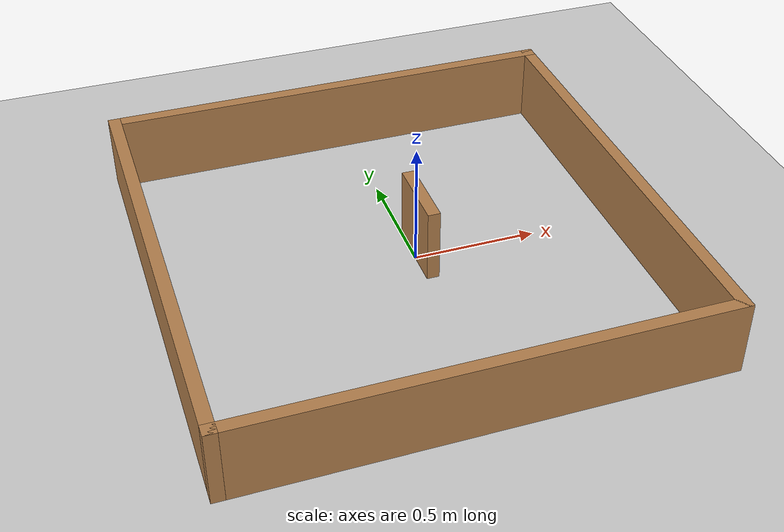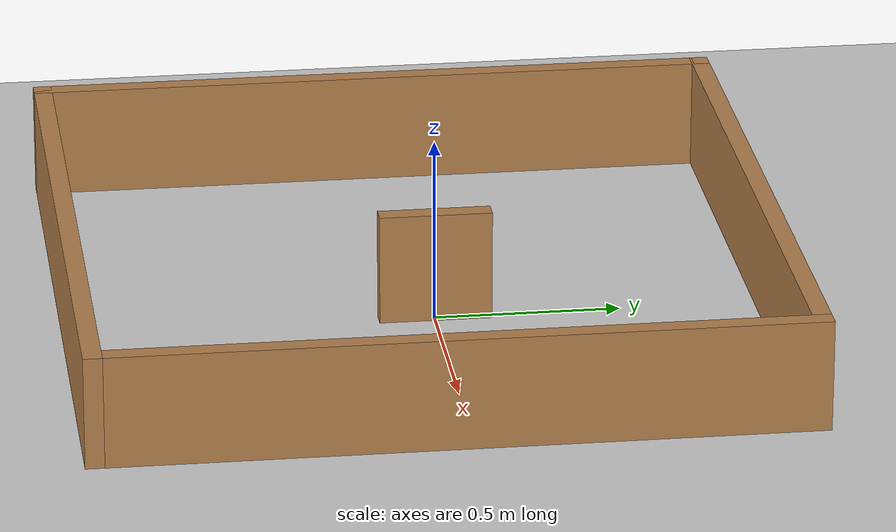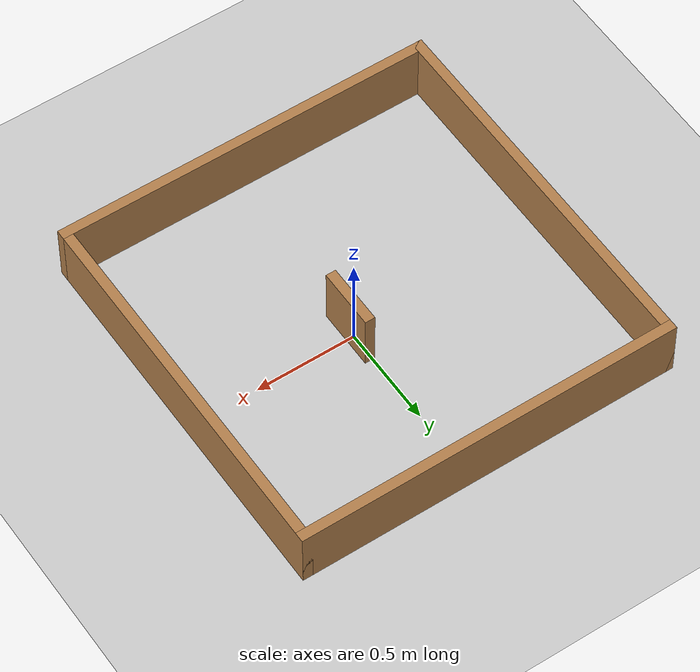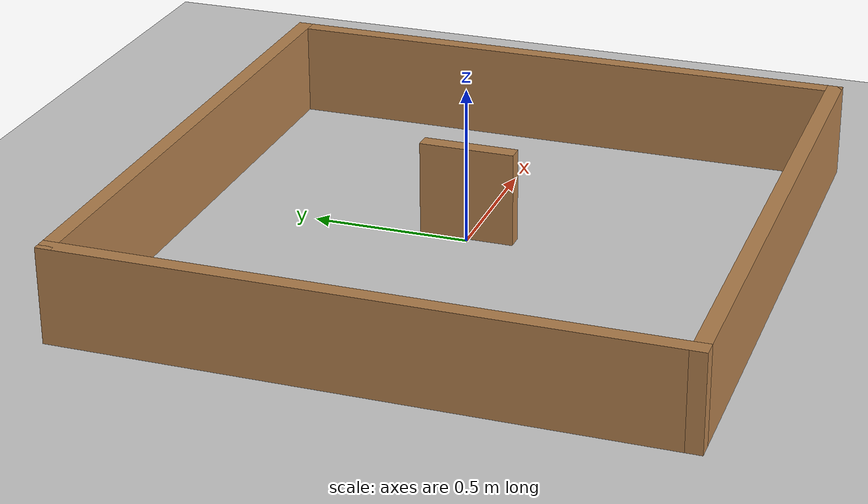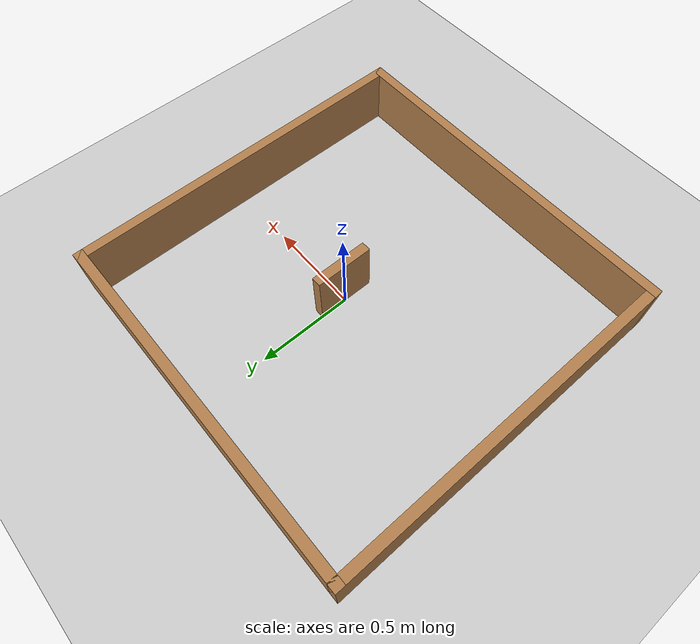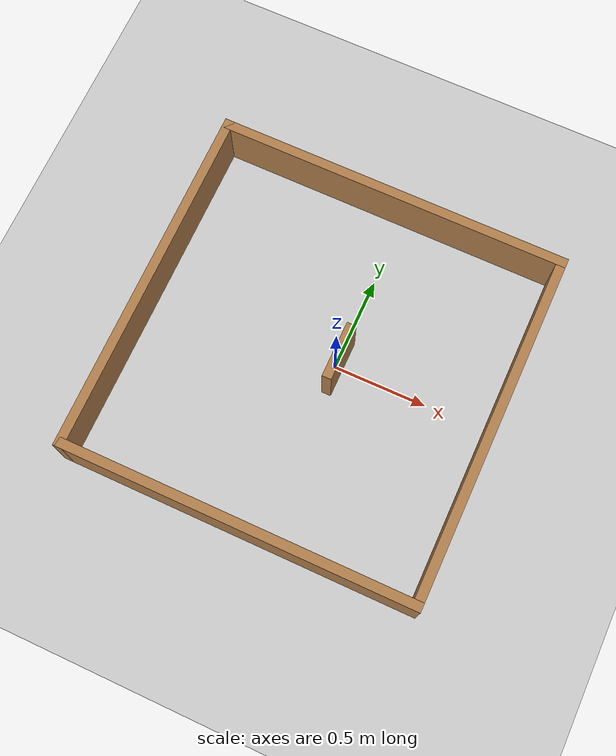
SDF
<sdf version="1.7">
 <world name="default">
  <light name="sun" type="directional">
   <pose>0 0 10 0 -0 0</pose>
   <diffuse>0.8 0.8 0.8 1</diffuse>
   <specular>0.2 0.2 0.2 1</specular>
   <attenuation>
    <range>1000</range>
    <constant>0.9</constant>
    <linear>0.01</linear>
    <quadratic>0.001</quadratic>
   </attenuation>
   <direction>-0.5 0.1 -0.9</direction>
   <spot><inner_angle>0</inner_angle><outer_angle>0</outer_angle><falloff>0</falloff></spot>
  </light>
  <model name="ground_plane">
   <static>1</static>
   <link name="link">
    <collision name="collision">
     <geometry><plane><normal>0 0 1</normal><size>100 100</size></plane></geometry>
     <surface><friction><ode><mu>100</mu><mu2>50</mu2></ode></friction></surface>
    </collision>
    <visual name="visual">
     <cast_shadows>0</cast_shadows>
     <geometry><plane><normal>0 0 1</normal><size>100 100</size></plane></geometry>
     <material>
      <script><uri>file://media/materials/scripts/gazebo.material</uri><name>Gazebo/Grey</name></script>
     </material>
    </visual>
   </link>
  </model>
  <model name="square2m">
   <pose>0 0.5 0.01 0 -0 0</pose>
   <link name="Wall_0">
    <collision name="Wall_0_Collision">
     <geometry><box><size>1.9 0.05 0.3</size></box></geometry>
     <pose>0 0 0.15 0 -0 0</pose>
    </collision>
    <visual name="Wall_0_Visual">
     <pose>0 0 0.15 0 -0 0</pose>
     <geometry><box><size>1.9 0.05 0.3</size></box></geometry>
     <material>
      <script><uri>file://media/materials/scripts/gazebo.material</uri><name>Gazebo/Wood</name></script>
      <ambient>1 1 1 1</ambient>
     </material>
     <meta><layer>0</layer></meta>
    </visual>
    <pose>-0.0825 0.3825 0 0 -0 0</pose>
   </link>
   <link name="Wall_1">
    <collision name="Wall_1_Collision">
     <geometry><box><size>1.9 0.05 0.3</size></box></geometry>
     <pose>0 0 0.15 0 -0 0</pose>
    </collision>
    <visual name="Wall_1_Visual">
     <pose>0 0 0.15 0 -0 0</pose>
     <geometry><box><size>1.9 0.05 0.3</size></box></geometry>
     <material>
      <script><uri>file://media/materials/scripts/gazebo.material</uri><name>Gazebo/Wood</name></script>
      <ambient>1 1 1 1</ambient>
     </material>
     <meta><layer>0</layer></meta>
    </visual>
    <pose>0.8425 -0.5425 0 0 -0 -1.5708</pose>
   </link>
   <link name="Wall_2">
    <collision name="Wall_2_Collision">
     <geometry><box><size>1.9 0.05 0.3</size></box></geometry>
     <pose>0 0 0.15 0 -0 0</pose>
    </collision>
    <visual name="Wall_2_Visual">
     <pose>0 0 0.15 0 -0 0</pose>
     <geometry><box><size>1.9 0.05 0.3</size></box></geometry>
     <material>
      <script><uri>file://media/materials/scripts/gazebo.material</uri><name>Gazebo/Wood</name></script>
      <ambient>1 1 1 1</ambient>
     </material>
     <meta><layer>0</layer></meta>
    </visual>
    <pose>-0.0825 -1.4675 0 0 -0 3.14159</pose>
   </link>
   <link name="Wall_3">
    <collision name="Wall_3_Collision">
     <geometry><box><size>1.9 0.05 0.3</size></box></geometry>
     <pose>0 0 0.15 0 -0 0</pose>
    </collision>
    <visual name="Wall_3_Visual">
     <pose>0 0 0.15 0 -0 0</pose>
     <geometry><box><size>1.9 0.05 0.3</size></box></geometry>
     <material>
      <script><uri>file://media/materials/scripts/gazebo.material</uri><name>Gazebo/Wood</name></script>
      <ambient>1 1 1 1</ambient>
     </material>
     <meta><layer>0</layer></meta>
    </visual>
    <pose>-1.0075 -0.5425 0 0 -0 1.5708</pose>
   </link>
   <static>1</static>
  </model>
  <model name="wall30cm">
   <pose>0.018215 -0.000652 0.01 0 -0 1.57</pose>
   <link name="Wall_0">
    <collision name="Wall_0_Collision">
     <geometry><box><size>0.3 0.05 0.3</size></box></geometry>
     <pose>0 0 0.15 0 -0 0</pose>
    </collision>
    <visual name="Wall_0_Visual">
     <pose>0 0 0.15 0 -0 0</pose>
     <geometry><box><size>0.3 0.05 0.3</size></box></geometry>
     <material>
      <script><uri>file://media/materials/scripts/gazebo.material</uri><name>Gazebo/Wood</name></script>
      <ambient>1 1 1 1</ambient>
     </material>
     <meta><layer>0</layer></meta>
    </visual>
   </link>
   <static>1</static>
  </model>
  <gravity>0 0 -9.8</gravity>
  <magnetic_field>6e-06 2.3e-05 -4.2e-05</magnetic_field>
  <atmosphere type="adiabatic"/>
  <physics type="ode">
   <max_step_size>0.001</max_step_size>
   <real_time_factor>1</real_time_factor>
   <real_time_update_rate>1000</real_time_update_rate>
  </physics>
  <scene><ambient>0.4 0.4 0.4 1</ambient><background>0.7 0.7 0.7 1</background><shadows>1</shadows></scene>
  <spherical_coordinates>
   <surface_model>EARTH_WGS84</surface_model>
   <latitude_deg>0</latitude_deg>
   <longitude_deg>0</longitude_deg>
   <elevation>0</elevation>
   <heading_deg>0</heading_deg>
  </spherical_coordinates>
 </world>
</sdf>
